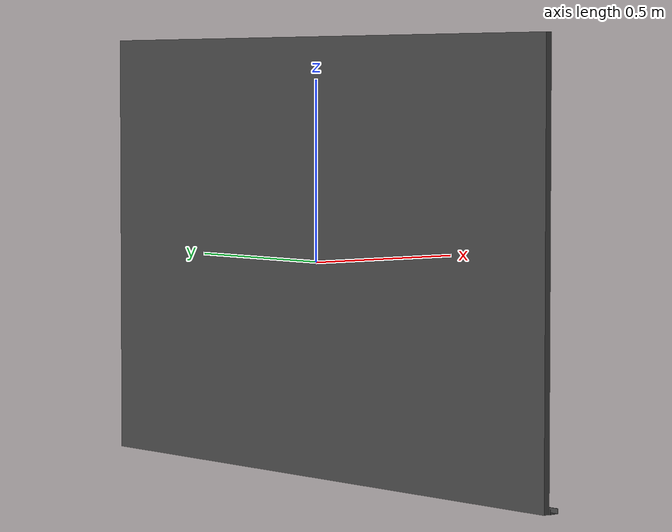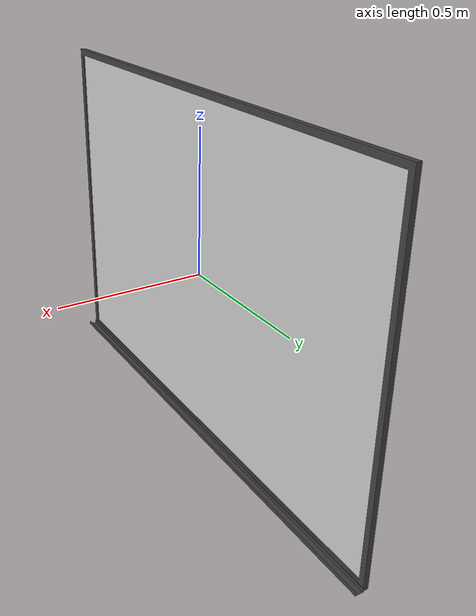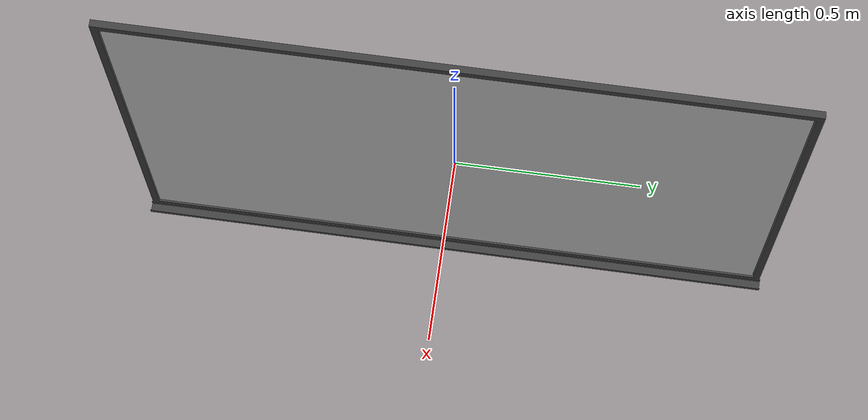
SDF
<?xml version='1.0'?>
<sdf version='1.5'>
    <model name="whiteboard_wall">
        <pose>0 0 0 0 0 0</pose>
        <static>true</static>
        <link name='model_body'>
            <visual name="visual">
                <geometry>
                    <mesh>
                        <uri>model://robert_gazebo/meshes/board_008_visual.dae</uri>
                        <scale>1 1 1</scale>
                    </mesh>
                </geometry>
            </visual>

            <collision name="collision">
                <geometry>
                    <mesh>
                        <uri>model://robert_gazebo/meshes/board_008_collision.dae</uri>
                        <scale>1 1 1</scale>
                    </mesh>
                </geometry>
            </collision>
            <inertial>
                <pose>0 0 0 0 0 0</pose>
                <inertia>

                    <ixx>6.001</ixx>
                    <ixy>0</ixy>
                    <ixz>0</ixz>
                    <iyy>2.761</iyy>
                    <iyz>0</iyz>
                    <izz>1.241</izz>
                </inertia>
                <mass>6.0</mass>
            </inertial>
        </link>
    </model>
</sdf>
